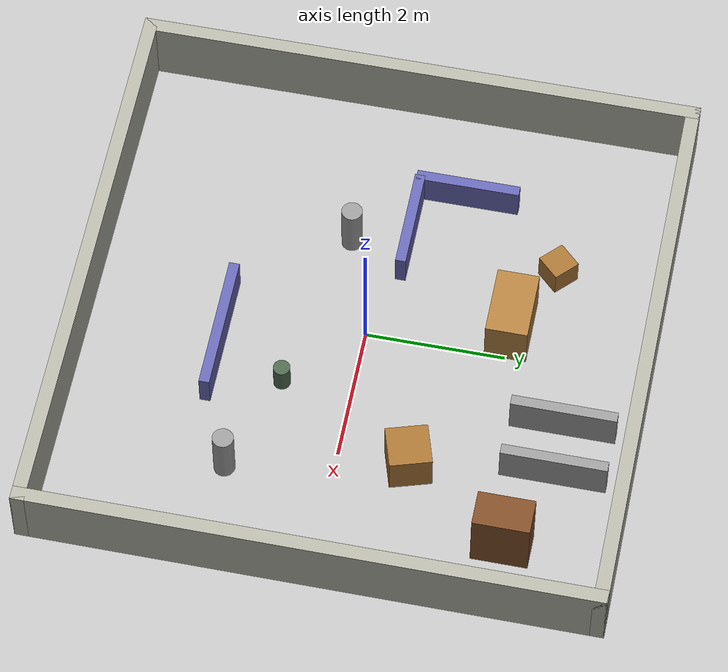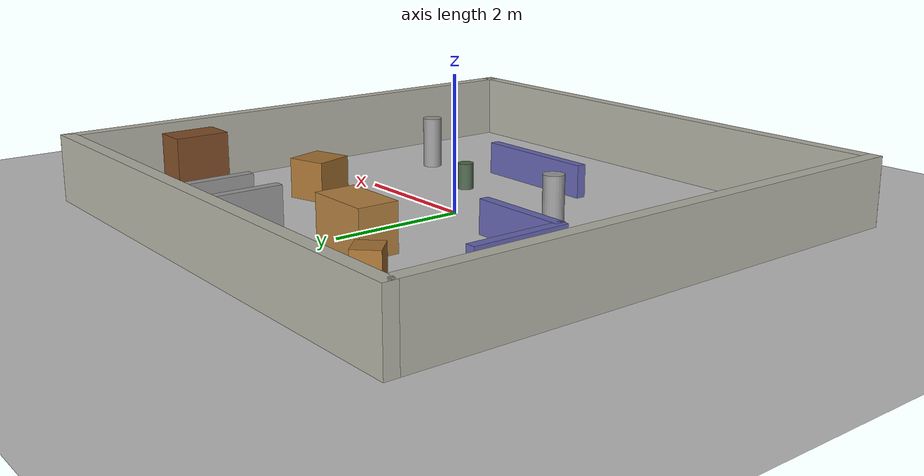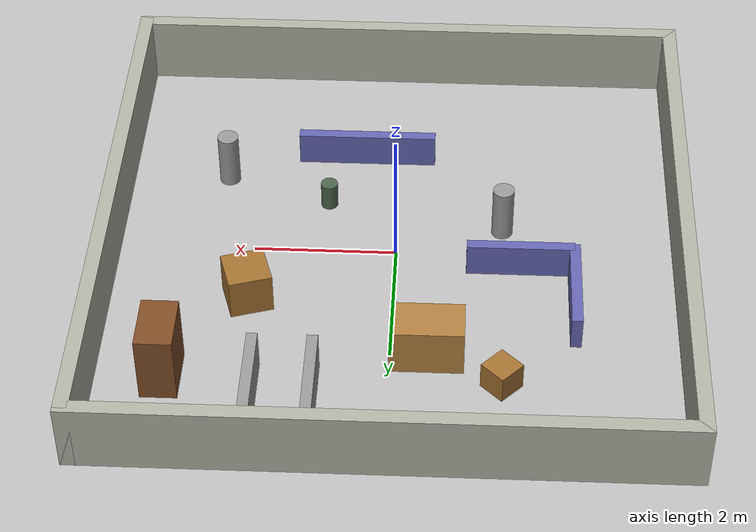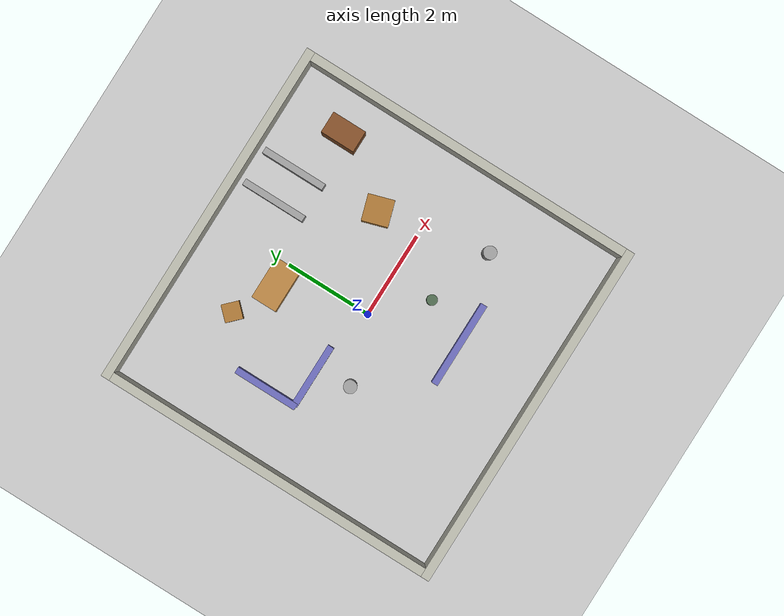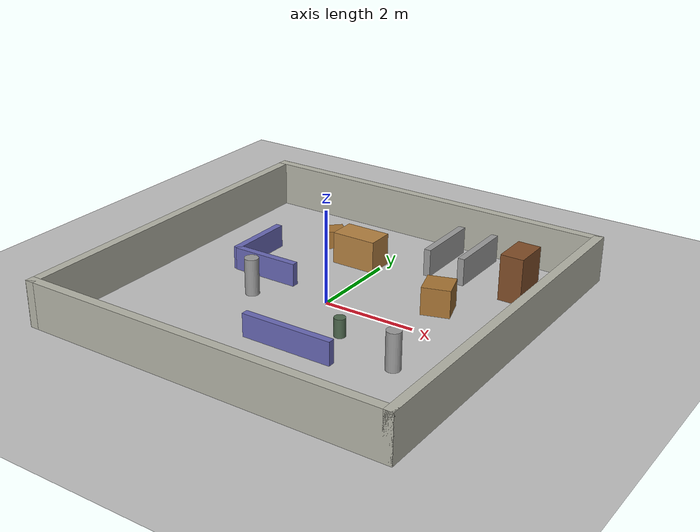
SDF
<?xml version="1.0" ?>
<sdf version="1.8">
    <world name="obstacles">

        <!-- Physics -->
        <physics name="1ms" type="ignored">
            <max_step_size>0.001</max_step_size>
            <real_time_factor>1.0</real_time_factor>
        </physics>

        <!-- Plugins -->
        <plugin filename="gz-sim-physics-system" name="gz::sim::systems::Physics"/>
        <plugin filename="gz-sim-user-commands-system" name="gz::sim::systems::UserCommands"/>
        <plugin filename="gz-sim-scene-broadcaster-system" name="gz::sim::systems::SceneBroadcaster"/>

        <!-- ═══ Lighting ═══ -->
        <light type="directional" name="sun">
            <cast_shadows>true</cast_shadows>
            <pose>0 0 10 0 0 0</pose>
            <diffuse>0.9 0.9 0.85 1</diffuse>
            <specular>0.3 0.3 0.3 1</specular>
            <attenuation>
                <range>1000</range>
                <constant>0.9</constant>
                <linear>0.01</linear>
                <quadratic>0.001</quadratic>
            </attenuation>
            <direction>-0.5 0.1 -0.9</direction>
        </light>

        <!-- ═══ Ground Plane (tile floor) ═══ -->
        <model name="ground_plane">
            <static>true</static>
            <link name="link">
                <collision name="collision">
                    <geometry>
                        <plane>
                            <normal>0 0 1</normal>
                        </plane>
                    </geometry>
                    <surface>
                        <friction>
                            <ode>
                                <mu>1.0</mu>
                                <mu2>1.0</mu2>
                            </ode>
                        </friction>
                    </surface>
                </collision>
                <visual name="visual">
                    <geometry>
                        <plane>
                            <normal>0 0 1</normal>
                            <size>20 20</size>
                        </plane>
                    </geometry>
                    <material>
                        <ambient>0.7 0.7 0.7 1</ambient>
                        <diffuse>0.75 0.75 0.75 1</diffuse>
                        <specular>0.4 0.4 0.4 1</specular>
                    </material>
                </visual>
            </link>
        </model>

        <!-- ═══════════════════════════════════════════════
             WALLS — Perimeter (8m x 8m room)
             ═══════════════════════════════════════════════ -->

        <!-- Wall North -->
        <model name="wall_north">
            <static>true</static>
            <pose>0 4 0.5 0 0 0</pose>
            <link name="link">
                <collision name="collision">
                    <geometry><box><size>8.2 0.2 1.0</size></box></geometry>
                </collision>
                <visual name="visual">
                    <geometry><box><size>8.2 0.2 1.0</size></box></geometry>
                    <material>
                        <ambient>0.6 0.6 0.55 1</ambient>
                        <diffuse>0.7 0.7 0.65 1</diffuse>
                    </material>
                </visual>
            </link>
        </model>

        <!-- Wall South -->
        <model name="wall_south">
            <static>true</static>
            <pose>0 -4 0.5 0 0 0</pose>
            <link name="link">
                <collision name="collision">
                    <geometry><box><size>8.2 0.2 1.0</size></box></geometry>
                </collision>
                <visual name="visual">
                    <geometry><box><size>8.2 0.2 1.0</size></box></geometry>
                    <material>
                        <ambient>0.6 0.6 0.55 1</ambient>
                        <diffuse>0.7 0.7 0.65 1</diffuse>
                    </material>
                </visual>
            </link>
        </model>

        <!-- Wall East -->
        <model name="wall_east">
            <static>true</static>
            <pose>4 0 0.5 0 0 0</pose>
            <link name="link">
                <collision name="collision">
                    <geometry><box><size>0.2 8.2 1.0</size></box></geometry>
                </collision>
                <visual name="visual">
                    <geometry><box><size>0.2 8.2 1.0</size></box></geometry>
                    <material>
                        <ambient>0.6 0.6 0.55 1</ambient>
                        <diffuse>0.7 0.7 0.65 1</diffuse>
                    </material>
                </visual>
            </link>
        </model>

        <!-- Wall West -->
        <model name="wall_west">
            <static>true</static>
            <pose>-4 0 0.5 0 0 0</pose>
            <link name="link">
                <collision name="collision">
                    <geometry><box><size>0.2 8.2 1.0</size></box></geometry>
                </collision>
                <visual name="visual">
                    <geometry><box><size>0.2 8.2 1.0</size></box></geometry>
                    <material>
                        <ambient>0.6 0.6 0.55 1</ambient>
                        <diffuse>0.7 0.7 0.65 1</diffuse>
                    </material>
                </visual>
            </link>
        </model>

        <!-- ═══════════════════════════════════════════════
             OBSTACLES — Boxes, cylinders, barriers
             ═══════════════════════════════════════════════ -->

        <!-- Box 1: Large crate (center-right) -->
        <model name="box_crate_1">
            <static>true</static>
            <pose>2.0 1.0 0.3 0 0 0.3</pose>
            <link name="link">
                <collision name="collision">
                    <geometry><box><size>0.6 0.6 0.6</size></box></geometry>
                </collision>
                <visual name="visual">
                    <geometry><box><size>0.6 0.6 0.6</size></box></geometry>
                    <material>
                        <ambient>0.55 0.35 0.15 1</ambient>
                        <diffuse>0.65 0.45 0.2 1</diffuse>
                    </material>
                </visual>
            </link>
        </model>

        <!-- Box 2: Small crate near wall -->
        <model name="box_crate_2">
            <static>true</static>
            <pose>-1.5 2.5 0.2 0 0 0.8</pose>
            <link name="link">
                <collision name="collision">
                    <geometry><box><size>0.4 0.4 0.4</size></box></geometry>
                </collision>
                <visual name="visual">
                    <geometry><box><size>0.4 0.4 0.4</size></box></geometry>
                    <material>
                        <ambient>0.55 0.35 0.15 1</ambient>
                        <diffuse>0.65 0.45 0.2 1</diffuse>
                    </material>
                </visual>
            </link>
        </model>

        <!-- Cylinder 1: Pillar (center-left) -->
        <model name="pillar_1">
            <static>true</static>
            <pose>-1.5 -0.5 0.4 0 0 0</pose>
            <link name="link">
                <collision name="collision">
                    <geometry><cylinder><radius>0.15</radius><length>0.8</length></cylinder></geometry>
                </collision>
                <visual name="visual">
                    <geometry><cylinder><radius>0.15</radius><length>0.8</length></cylinder></geometry>
                    <material>
                        <ambient>0.5 0.5 0.5 1</ambient>
                        <diffuse>0.6 0.6 0.6 1</diffuse>
                    </material>
                </visual>
            </link>
        </model>

        <!-- Cylinder 2: Pillar (far right) -->
        <model name="pillar_2">
            <static>true</static>
            <pose>2.5 -1.5 0.4 0 0 0</pose>
            <link name="link">
                <collision name="collision">
                    <geometry><cylinder><radius>0.15</radius><length>0.8</length></cylinder></geometry>
                </collision>
                <visual name="visual">
                    <geometry><cylinder><radius>0.15</radius><length>0.8</length></cylinder></geometry>
                    <material>
                        <ambient>0.5 0.5 0.5 1</ambient>
                        <diffuse>0.6 0.6 0.6 1</diffuse>
                    </material>
                </visual>
            </link>
        </model>

        <!-- Barrier 1: Long wall/shelf (horizontal, center) -->
        <model name="barrier_shelf">
            <static>true</static>
            <pose>0.5 -2.0 0.25 0 0 0</pose>
            <link name="link">
                <collision name="collision">
                    <geometry><box><size>2.0 0.15 0.5</size></box></geometry>
                </collision>
                <visual name="visual">
                    <geometry><box><size>2.0 0.15 0.5</size></box></geometry>
                    <material>
                        <ambient>0.3 0.3 0.6 1</ambient>
                        <diffuse>0.4 0.4 0.7 1</diffuse>
                    </material>
                </visual>
            </link>
        </model>

        <!-- Barrier 2: L-shaped corner (vertical part) -->
        <model name="barrier_L_vert">
            <static>true</static>
            <pose>-2.5 1.0 0.25 0 0 0</pose>
            <link name="link">
                <collision name="collision">
                    <geometry><box><size>0.15 1.5 0.5</size></box></geometry>
                </collision>
                <visual name="visual">
                    <geometry><box><size>0.15 1.5 0.5</size></box></geometry>
                    <material>
                        <ambient>0.3 0.3 0.6 1</ambient>
                        <diffuse>0.4 0.4 0.7 1</diffuse>
                    </material>
                </visual>
            </link>
        </model>

        <!-- Barrier 3: L-shaped corner (horizontal part) -->
        <model name="barrier_L_horiz">
            <static>true</static>
            <pose>-1.75 0.3 0.25 0 0 0</pose>
            <link name="link">
                <collision name="collision">
                    <geometry><box><size>1.5 0.15 0.5</size></box></geometry>
                </collision>
                <visual name="visual">
                    <geometry><box><size>1.5 0.15 0.5</size></box></geometry>
                    <material>
                        <ambient>0.3 0.3 0.6 1</ambient>
                        <diffuse>0.4 0.4 0.7 1</diffuse>
                    </material>
                </visual>
            </link>
        </model>

        <!-- Tall box: Bookshelf/cabinet -->
        <model name="cabinet">
            <static>true</static>
            <pose>3.0 2.5 0.5 0 0 0</pose>
            <link name="link">
                <collision name="collision">
                    <geometry><box><size>0.5 0.8 1.0</size></box></geometry>
                </collision>
                <visual name="visual">
                    <geometry><box><size>0.5 0.8 1.0</size></box></geometry>
                    <material>
                        <ambient>0.4 0.25 0.1 1</ambient>
                        <diffuse>0.5 0.3 0.15 1</diffuse>
                    </material>
                </visual>
            </link>
        </model>

        <!-- Table: flat surface with legs implied -->
        <model name="table">
            <static>true</static>
            <pose>-0.5 2.0 0.35 0 0 0</pose>
            <link name="link">
                <collision name="collision">
                    <geometry><box><size>1.0 0.6 0.7</size></box></geometry>
                </collision>
                <visual name="visual">
                    <geometry><box><size>1.0 0.6 0.7</size></box></geometry>
                    <material>
                        <ambient>0.6 0.4 0.2 1</ambient>
                        <diffuse>0.7 0.5 0.25 1</diffuse>
                    </material>
                </visual>
            </link>
        </model>

        <!-- Small cylinder: Trash can -->
        <model name="trash_can">
            <static>true</static>
            <pose>1.0 -1.0 0.2 0 0 0</pose>
            <link name="link">
                <collision name="collision">
                    <geometry><cylinder><radius>0.12</radius><length>0.4</length></cylinder></geometry>
                </collision>
                <visual name="visual">
                    <geometry><cylinder><radius>0.12</radius><length>0.4</length></cylinder></geometry>
                    <material>
                        <ambient>0.2 0.3 0.2 1</ambient>
                        <diffuse>0.3 0.4 0.3 1</diffuse>
                    </material>
                </visual>
            </link>
        </model>

        <!-- Narrow passage: Two walls close together -->
        <model name="passage_left">
            <static>true</static>
            <pose>1.0 3.0 0.3 0 0 0</pose>
            <link name="link">
                <collision name="collision">
                    <geometry><box><size>0.15 1.5 0.6</size></box></geometry>
                </collision>
                <visual name="visual">
                    <geometry><box><size>0.15 1.5 0.6</size></box></geometry>
                    <material>
                        <ambient>0.5 0.5 0.5 1</ambient>
                        <diffuse>0.6 0.6 0.6 1</diffuse>
                    </material>
                </visual>
            </link>
        </model>

        <model name="passage_right">
            <static>true</static>
            <pose>1.8 3.0 0.3 0 0 0</pose>
            <link name="link">
                <collision name="collision">
                    <geometry><box><size>0.15 1.5 0.6</size></box></geometry>
                </collision>
                <visual name="visual">
                    <geometry><box><size>0.15 1.5 0.6</size></box></geometry>
                    <material>
                        <ambient>0.5 0.5 0.5 1</ambient>
                        <diffuse>0.6 0.6 0.6 1</diffuse>
                    </material>
                </visual>
            </link>
        </model>

    </world>
</sdf>
